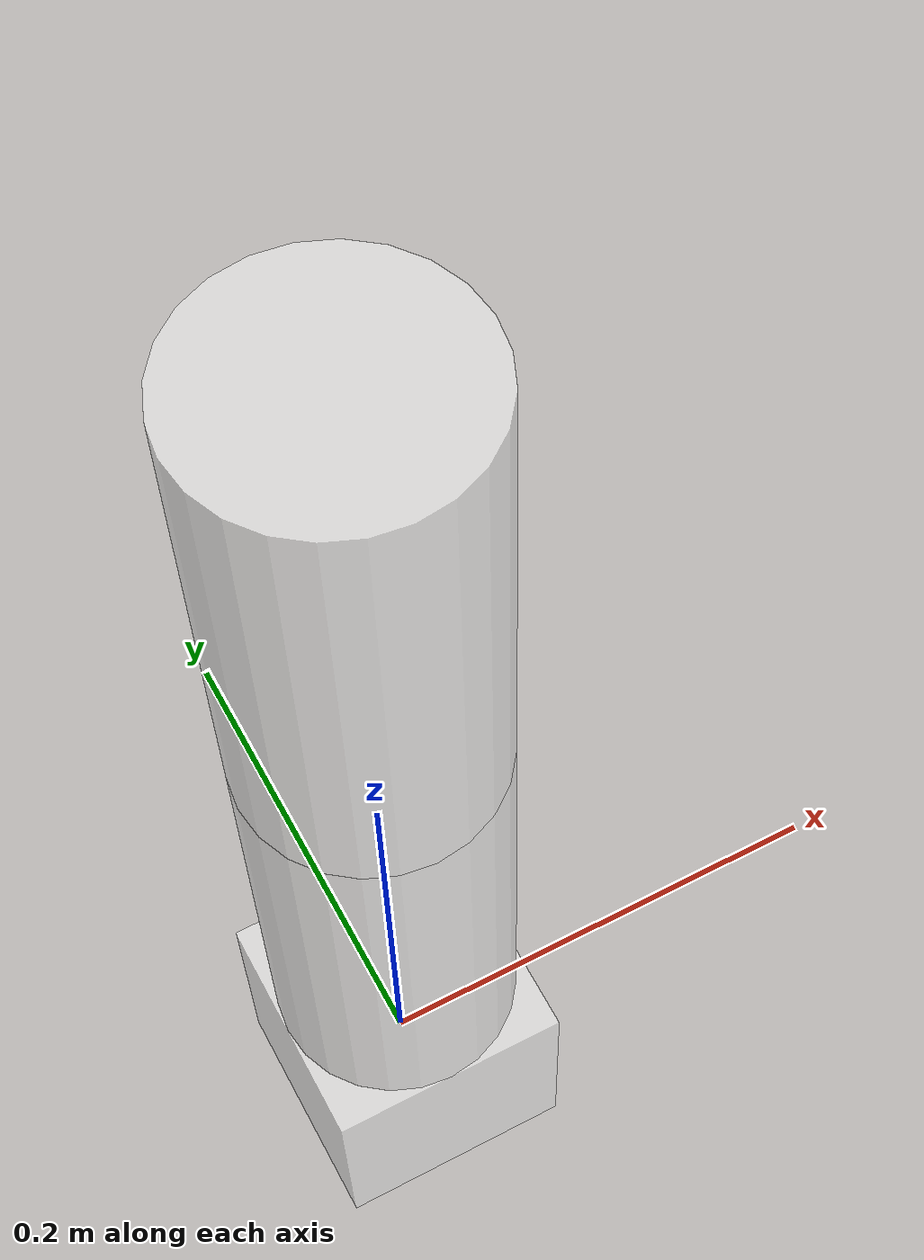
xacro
<?xml version="1.0"?>
<robot xmlns:xacro="http://www.ros.org/wiki/xacro" name="easy_bot">

<xacro:include filename="$(find easy_bot)/urdf/easy_bot_description.urdf.xacro"/>
<xacro:include filename="$(find easy_bot)/urdf/easy_bot.ros2_control.xacro"/>

<xacro:easybot_description />
<xacro:easybot_ros2_control />

</robot>

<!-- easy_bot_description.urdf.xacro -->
<robot xmlns:xacro="http://www.ros.org/wiki/xacro">
    <xacro:include filename="$(find easy_bot)/urdf/common_inertia.xacro"/>

    <xacro:macro name="easybot_description">
    <link name="world" />

    <link name="base_link">
        <visual>
            <origin xyz="0.0 0.0 0.0" rpy="0.0 0.0 0.0"/>
            <geometry>
                <box size="0.1 0.1 0.1"/>
            </geometry>
            <material name='white'>
                <color rgba="1.0 1.0 1.0 0.5"/>
            </material>
        </visual>

        <collision>
            <origin xyz="0.0 0.0 0.0" rpy="0.0 0.0 0.0"/>
            <geometry>
                <box size="0.1 0.1 0.1"/>
            </geometry>
            <material name='white'>
                <color rgba="1.0 1.0 1.0 0.5"/>
            </material>
        </collision>

        <xacro:box_inertia m="1.0" w="0.1" h="0.1" d="0.1" />

    </link>

    <joint name="world_to_base" type="fixed">
        <parent link="world"/>
        <child link="base_link"/>
    </joint>

    <link name="link1">
        <visual>
            <origin xyz="0.0 0.0 0.1" rpy="0.0 0.0 0.0"/>
            <geometry>
                <cylinder radius="0.05" length="0.2"/>
            </geometry>
            <material name='white'>
                <color rgba="1.0 1.0 1.0 0.5"/>
            </material>
        </visual>

        <collision>
            <origin xyz="0.0 0.0 0.1" rpy="0.0 0.0 0.0"/>
            <geometry>
                <cylinder radius="0.1" length="0.2"/>
            </geometry>
            <material name='white'>
                <color rgba="1.0 1.0 1.0 0.5"/>
            </material>
        </collision>

        <xacro:cylinder_inertia m="1.0" r="0.1" h="0.2" />
    </link>

    <joint name="joint1" type="continuous">
        <parent link="base_link"/>
        <child link="link1"/>
        <origin xyz="0.0 0.0 0.05" rpy="0.0 0.0 0.0"/>
        <axis xyz="0.0 0.0 1.0"/>
    </joint>

    <link name="link2">
        <visual>
            <origin xyz="0.0 0.0 0.1" rpy="0.0 0.0 0.0"/>
            <geometry>
                <cylinder radius="0.05" length="0.2"/>
            </geometry>
            <material name='white'>
                <color rgba="1.0 1.0 1.0 0.5"/>
            </material>
        </visual>

        <collision>
            <origin xyz="0.0 0.0 0.1" rpy="0.0 0.0 0.0"/>
            <geometry>
                <cylinder radius="0.1" length="0.2"/>
            </geometry>
            <material name='white'>
                <color rgba="1.0 1.0 1.0 0.5"/>
            </material>
        </collision>

        <xacro:cylinder_inertia m="1.0" r="0.1" h="0.2" />
    </link>

    <joint name="joint2" type="continuous">
        <parent link="link1"/>
        <child link="link2"/>
        <origin xyz="0.0 0.0 0.2" rpy="0.0 0.0 0.0"/>
        <axis xyz="0.0 1.0 0.0"/>
    </joint>

    </xacro:macro>
</robot>
